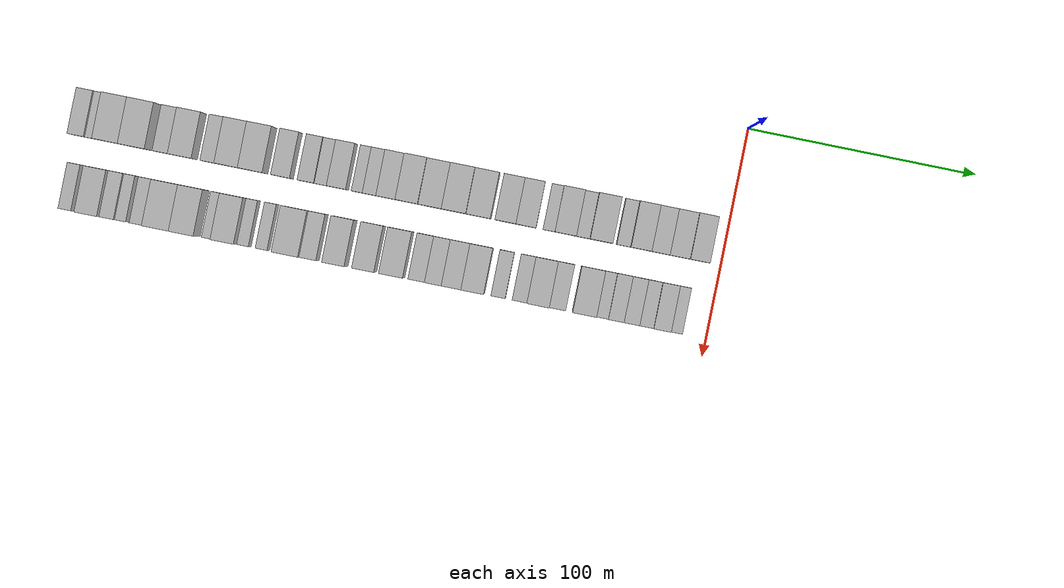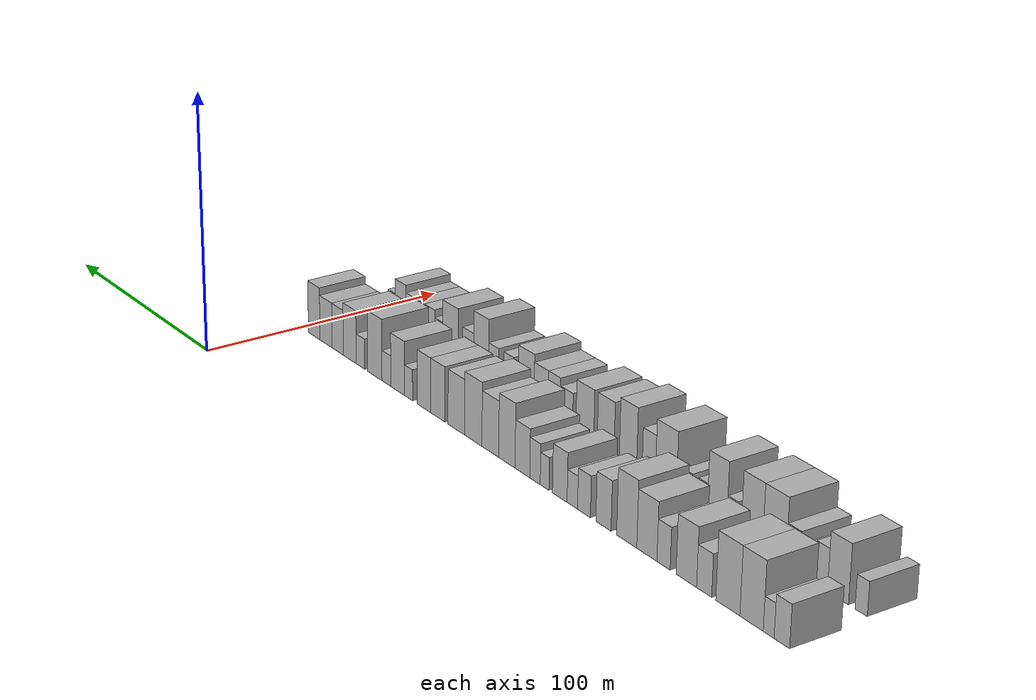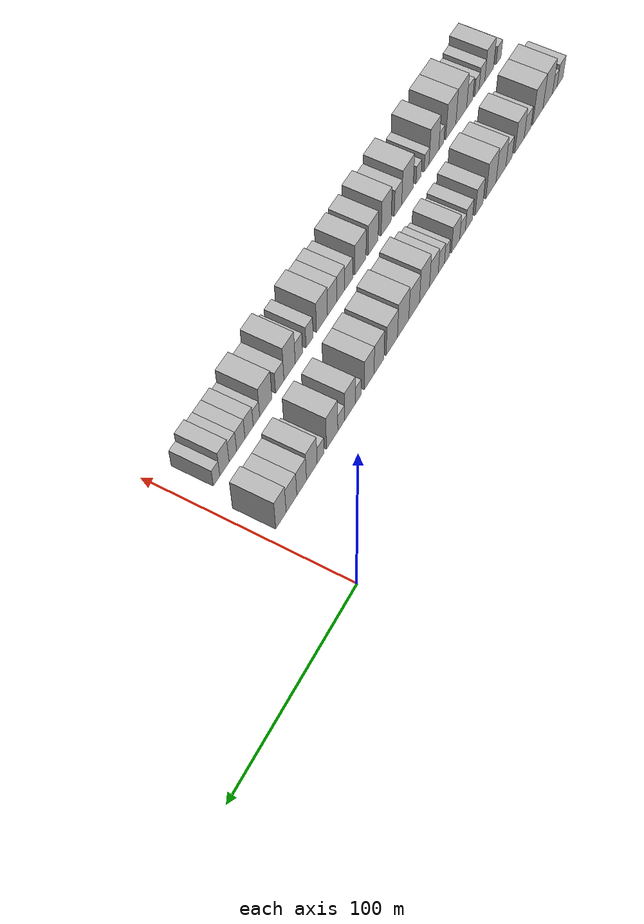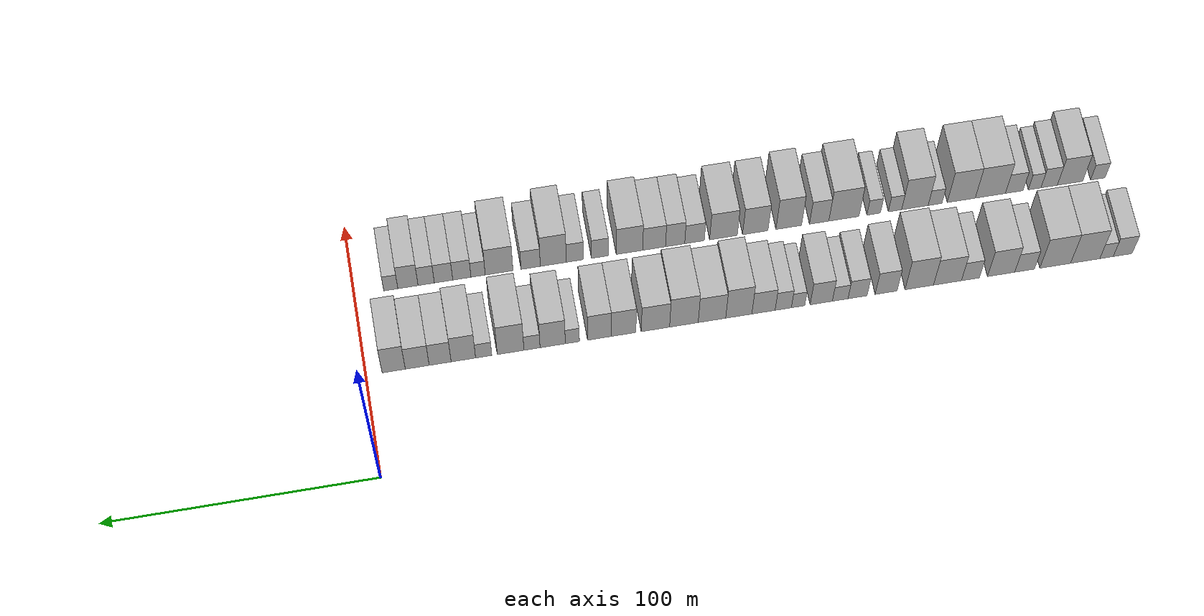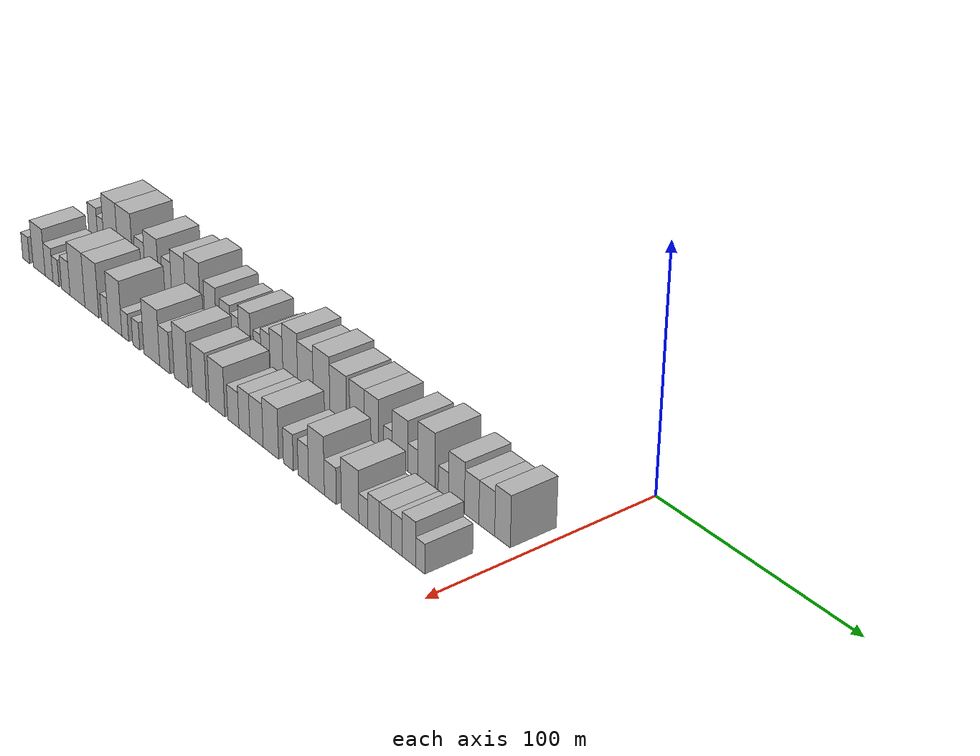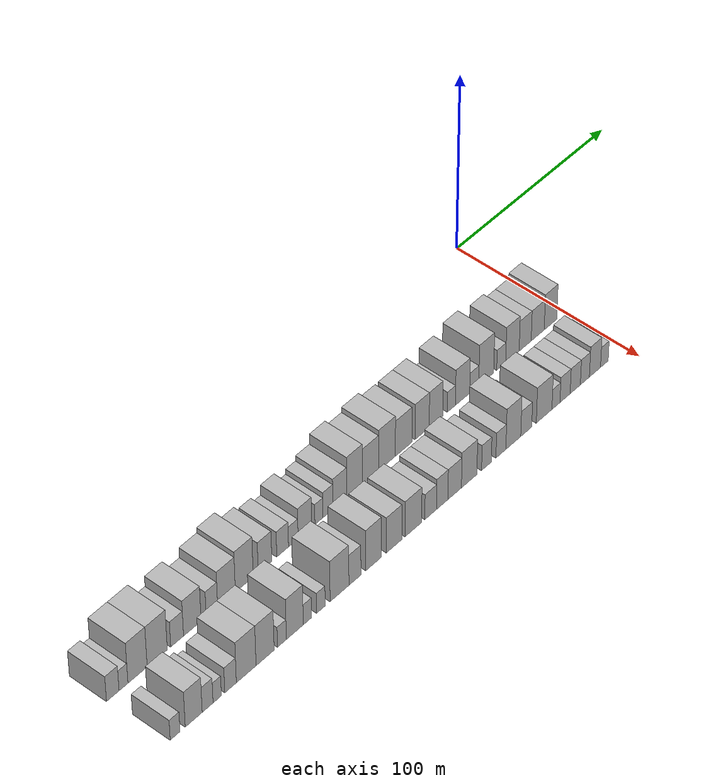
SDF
<sdf version="1.6">
 <world name="default">
  <model name="building_1">
   <static>1</static>
   <pose>50.0000 -280.4300 0 0.000000 0.000000 0.000000</pose>
   <link name="link">
    <pose>0 0 7.50 0 0 0</pose>
    <collision name="collision"><geometry><box><size>20.0000 7.1401 15.0000</size></box></geometry></collision>
    <visual name="visual">
     <cast_shadows>0</cast_shadows>
     <geometry><box><size>20.0000 7.1401 15.0000</size></box></geometry>
     <material>
      <script>
       <uri>model://HANNAS_wall/materials/scripts</uri>
       <uri>model://HANNAS_wall/materials/textures</uri>
       <name>vrc/HANNAS_wall</name>
      </script>
     </material>
    </visual>
   </link>
  </model>
  <model name="building_2">
   <static>1</static>
   <pose>50.0000 -274.3220 0 0.000000 0.000000 0.000000</pose>
   <link name="link">
    <pose>0 0 6.00 0 0 0</pose>
    <collision name="collision"><geometry><box><size>20.0000 5.0758 12.0000</size></box></geometry></collision>
    <visual name="visual">
     <cast_shadows>0</cast_shadows>
     <geometry><box><size>20.0000 5.0758 12.0000</size></box></geometry>
     <material>
      <script>
       <uri>model://HANNAS_wall/materials/scripts</uri>
       <uri>model://HANNAS_wall/materials/textures</uri>
       <name>vrc/HANNAS_wall</name>
      </script>
     </material>
    </visual>
   </link>
  </model>
  <model name="building_3">
   <static>1</static>
   <pose>50.0000 -266.2725 0 0.000000 0.000000 0.000000</pose>
   <link name="link">
    <pose>0 0 12.00 0 0 0</pose>
    <collision name="collision"><geometry><box><size>20.0000 11.0232 24.0000</size></box></geometry></collision>
    <visual name="visual">
     <cast_shadows>0</cast_shadows>
     <geometry><box><size>20.0000 11.0232 24.0000</size></box></geometry>
     <material>
      <script>
       <uri>model://HANNAS_wall/materials/scripts</uri>
       <uri>model://HANNAS_wall/materials/textures</uri>
       <name>vrc/HANNAS_wall</name>
      </script>
     </material>
    </visual>
   </link>
  </model>
  <model name="building_4">
   <static>1</static>
   <pose>50.0000 -254.9526 0 0.000000 0.000000 0.000000</pose>
   <link name="link">
    <pose>0 0 12.00 0 0 0</pose>
    <collision name="collision"><geometry><box><size>20.0000 11.6165 24.0000</size></box></geometry></collision>
    <visual name="visual">
     <cast_shadows>0</cast_shadows>
     <geometry><box><size>20.0000 11.6165 24.0000</size></box></geometry>
     <material>
      <script>
       <uri>model://HANNAS_wall/materials/scripts</uri>
       <uri>model://HANNAS_wall/materials/textures</uri>
       <name>vrc/HANNAS_wall</name>
      </script>
     </material>
    </visual>
   </link>
  </model>
  <model name="building_5">
   <static>1</static>
   <pose>50.0000 -243.4171 0 0.000000 0.000000 0.000000</pose>
   <link name="link">
    <pose>0 0 7.50 0 0 0</pose>
    <collision name="collision"><geometry><box><size>20.0000 7.4547 15.0000</size></box></geometry></collision>
    <visual name="visual">
     <cast_shadows>0</cast_shadows>
     <geometry><box><size>20.0000 7.4547 15.0000</size></box></geometry>
     <material>
      <script>
       <uri>model://HANNAS_wall/materials/scripts</uri>
       <uri>model://HANNAS_wall/materials/textures</uri>
       <name>vrc/HANNAS_wall</name>
      </script>
     </material>
    </visual>
   </link>
  </model>
  <model name="building_6">
   <static>1</static>
   <pose>50.0000 -234.5609 0 0.000000 0.000000 0.000000</pose>
   <link name="link">
    <pose>0 0 10.50 0 0 0</pose>
    <collision name="collision"><geometry><box><size>20.0000 10.2577 21.0000</size></box></geometry></collision>
    <visual name="visual">
     <cast_shadows>0</cast_shadows>
     <geometry><box><size>20.0000 10.2577 21.0000</size></box></geometry>
     <material>
      <script>
       <uri>model://HANNAS_wall/materials/scripts</uri>
       <uri>model://HANNAS_wall/materials/textures</uri>
       <name>vrc/HANNAS_wall</name>
      </script>
     </material>
    </visual>
   </link>
  </model>
  <model name="building_7">
   <static>1</static>
   <pose>50.0000 -223.0473 0 0.000000 0.000000 0.000000</pose>
   <link name="link">
    <pose>0 0 7.50 0 0 0</pose>
    <collision name="collision"><geometry><box><size>20.0000 6.7694 15.0000</size></box></geometry></collision>
    <visual name="visual">
     <cast_shadows>0</cast_shadows>
     <geometry><box><size>20.0000 6.7694 15.0000</size></box></geometry>
     <material>
      <script>
       <uri>model://HANNAS_wall/materials/scripts</uri>
       <uri>model://HANNAS_wall/materials/textures</uri>
       <name>vrc/HANNAS_wall</name>
      </script>
     </material>
    </visual>
   </link>
  </model>
  <model name="building_8">
   <static>1</static>
   <pose>50.0000 -214.4296 0 0.000000 0.000000 0.000000</pose>
   <link name="link">
    <pose>0 0 10.50 0 0 0</pose>
    <collision name="collision"><geometry><box><size>20.0000 10.4660 21.0000</size></box></geometry></collision>
    <visual name="visual">
     <cast_shadows>0</cast_shadows>
     <geometry><box><size>20.0000 10.4660 21.0000</size></box></geometry>
     <material>
      <script>
       <uri>model://HANNAS_wall/materials/scripts</uri>
       <uri>model://HANNAS_wall/materials/textures</uri>
       <name>vrc/HANNAS_wall</name>
      </script>
     </material>
    </visual>
   </link>
  </model>
  <model name="building_9">
   <static>1</static>
   <pose>50.0000 -203.8691 0 0.000000 0.000000 0.000000</pose>
   <link name="link">
    <pose>0 0 12.00 0 0 0</pose>
    <collision name="collision"><geometry><box><size>20.0000 10.6550 24.0000</size></box></geometry></collision>
    <visual name="visual">
     <cast_shadows>0</cast_shadows>
     <geometry><box><size>20.0000 10.6550 24.0000</size></box></geometry>
     <material>
      <script>
       <uri>model://HANNAS_wall/materials/scripts</uri>
       <uri>model://HANNAS_wall/materials/textures</uri>
       <name>vrc/HANNAS_wall</name>
      </script>
     </material>
    </visual>
   </link>
  </model>
  <model name="building_10">
   <static>1</static>
   <pose>50.0000 -191.4496 0 0.000000 0.000000 0.000000</pose>
   <link name="link">
    <pose>0 0 9.00 0 0 0</pose>
    <collision name="collision"><geometry><box><size>20.0000 8.1842 18.0000</size></box></geometry></collision>
    <visual name="visual">
     <cast_shadows>0</cast_shadows>
     <geometry><box><size>20.0000 8.1842 18.0000</size></box></geometry>
     <material>
      <script>
       <uri>model://HANNAS_wall/materials/scripts</uri>
       <uri>model://HANNAS_wall/materials/textures</uri>
       <name>vrc/HANNAS_wall</name>
      </script>
     </material>
    </visual>
   </link>
  </model>
  <model name="building_11">
   <static>1</static>
   <pose>50.0000 -180.8008 0 0.000000 0.000000 0.000000</pose>
   <link name="link">
    <pose>0 0 7.50 0 0 0</pose>
    <collision name="collision"><geometry><box><size>20.0000 7.1133 15.0000</size></box></geometry></collision>
    <visual name="visual">
     <cast_shadows>0</cast_shadows>
     <geometry><box><size>20.0000 7.1133 15.0000</size></box></geometry>
     <material>
      <script>
       <uri>model://HANNAS_wall/materials/scripts</uri>
       <uri>model://HANNAS_wall/materials/textures</uri>
       <name>vrc/HANNAS_wall</name>
      </script>
     </material>
    </visual>
   </link>
  </model>
  <model name="building_12">
   <static>1</static>
   <pose>50.0000 -174.3327 0 0.000000 0.000000 0.000000</pose>
   <link name="link">
    <pose>0 0 6.00 0 0 0</pose>
    <collision name="collision"><geometry><box><size>20.0000 5.8230 12.0000</size></box></geometry></collision>
    <visual name="visual">
     <cast_shadows>0</cast_shadows>
     <geometry><box><size>20.0000 5.8230 12.0000</size></box></geometry>
     <material>
      <script>
       <uri>model://HANNAS_wall/materials/scripts</uri>
       <uri>model://HANNAS_wall/materials/textures</uri>
       <name>vrc/HANNAS_wall</name>
      </script>
     </material>
    </visual>
   </link>
  </model>
  <model name="building_13">
   <static>1</static>
   <pose>50.0000 -167.2773 0 0.000000 0.000000 0.000000</pose>
   <link name="link">
    <pose>0 0 9.00 0 0 0</pose>
    <collision name="collision"><geometry><box><size>20.0000 8.2878 18.0000</size></box></geometry></collision>
    <visual name="visual">
     <cast_shadows>0</cast_shadows>
     <geometry><box><size>20.0000 8.2878 18.0000</size></box></geometry>
     <material>
      <script>
       <uri>model://HANNAS_wall/materials/scripts</uri>
       <uri>model://HANNAS_wall/materials/textures</uri>
       <name>vrc/HANNAS_wall</name>
      </script>
     </material>
    </visual>
   </link>
  </model>
  <model name="building_14">
   <static>1</static>
   <pose>50.0000 -158.6507 0 0.000000 0.000000 0.000000</pose>
   <link name="link">
    <pose>0 0 6.00 0 0 0</pose>
    <collision name="collision"><geometry><box><size>20.0000 4.9654 12.0000</size></box></geometry></collision>
    <visual name="visual">
     <cast_shadows>0</cast_shadows>
     <geometry><box><size>20.0000 4.9654 12.0000</size></box></geometry>
     <material>
      <script>
       <uri>model://HANNAS_wall/materials/scripts</uri>
       <uri>model://HANNAS_wall/materials/textures</uri>
       <name>vrc/HANNAS_wall</name>
      </script>
     </material>
    </visual>
   </link>
  </model>
  <model name="building_15">
   <static>1</static>
   <pose>50.0000 -153.1409 0 0.000000 0.000000 0.000000</pose>
   <link name="link">
    <pose>0 0 7.50 0 0 0</pose>
    <collision name="collision"><geometry><box><size>20.0000 6.0542 15.0000</size></box></geometry></collision>
    <visual name="visual">
     <cast_shadows>0</cast_shadows>
     <geometry><box><size>20.0000 6.0542 15.0000</size></box></geometry>
     <material>
      <script>
       <uri>model://HANNAS_wall/materials/scripts</uri>
       <uri>model://HANNAS_wall/materials/textures</uri>
       <name>vrc/HANNAS_wall</name>
      </script>
     </material>
    </visual>
   </link>
  </model>
  <model name="building_16">
   <static>1</static>
   <pose>50.0000 -145.7998 0 0.000000 0.000000 0.000000</pose>
   <link name="link">
    <pose>0 0 9.00 0 0 0</pose>
    <collision name="collision"><geometry><box><size>20.0000 8.6280 18.0000</size></box></geometry></collision>
    <visual name="visual">
     <cast_shadows>0</cast_shadows>
     <geometry><box><size>20.0000 8.6280 18.0000</size></box></geometry>
     <material>
      <script>
       <uri>model://HANNAS_wall/materials/scripts</uri>
       <uri>model://HANNAS_wall/materials/textures</uri>
       <name>vrc/HANNAS_wall</name>
      </script>
     </material>
    </visual>
   </link>
  </model>
  <model name="building_17">
   <static>1</static>
   <pose>50.0000 -136.6325 0 0.000000 0.000000 0.000000</pose>
   <link name="link">
    <pose>0 0 12.00 0 0 0</pose>
    <collision name="collision"><geometry><box><size>20.0000 9.7068 24.0000</size></box></geometry></collision>
    <visual name="visual">
     <cast_shadows>0</cast_shadows>
     <geometry><box><size>20.0000 9.7068 24.0000</size></box></geometry>
     <material>
      <script>
       <uri>model://HANNAS_wall/materials/scripts</uri>
       <uri>model://HANNAS_wall/materials/textures</uri>
       <name>vrc/HANNAS_wall</name>
      </script>
     </material>
    </visual>
   </link>
  </model>
  <model name="building_18">
   <static>1</static>
   <pose>50.0000 -126.6958 0 0.000000 0.000000 0.000000</pose>
   <link name="link">
    <pose>0 0 10.50 0 0 0</pose>
    <collision name="collision"><geometry><box><size>20.0000 10.1666 21.0000</size></box></geometry></collision>
    <visual name="visual">
     <cast_shadows>0</cast_shadows>
     <geometry><box><size>20.0000 10.1666 21.0000</size></box></geometry>
     <material>
      <script>
       <uri>model://HANNAS_wall/materials/scripts</uri>
       <uri>model://HANNAS_wall/materials/textures</uri>
       <name>vrc/HANNAS_wall</name>
      </script>
     </material>
    </visual>
   </link>
  </model>
  <model name="building_19">
   <static>1</static>
   <pose>50.0000 -116.3341 0 0.000000 0.000000 0.000000</pose>
   <link name="link">
    <pose>0 0 12.00 0 0 0</pose>
    <collision name="collision"><geometry><box><size>20.0000 10.5568 24.0000</size></box></geometry></collision>
    <visual name="visual">
     <cast_shadows>0</cast_shadows>
     <geometry><box><size>20.0000 10.5568 24.0000</size></box></geometry>
     <material>
      <script>
       <uri>model://HANNAS_wall/materials/scripts</uri>
       <uri>model://HANNAS_wall/materials/textures</uri>
       <name>vrc/HANNAS_wall</name>
      </script>
     </material>
    </visual>
   </link>
  </model>
  <model name="building_20">
   <static>1</static>
   <pose>50.0000 -105.8217 0 0.000000 0.000000 0.000000</pose>
   <link name="link">
    <pose>0 0 10.50 0 0 0</pose>
    <collision name="collision"><geometry><box><size>20.0000 10.4680 21.0000</size></box></geometry></collision>
    <visual name="visual">
     <cast_shadows>0</cast_shadows>
     <geometry><box><size>20.0000 10.4680 21.0000</size></box></geometry>
     <material>
      <script>
       <uri>model://HANNAS_wall/materials/scripts</uri>
       <uri>model://HANNAS_wall/materials/textures</uri>
       <name>vrc/HANNAS_wall</name>
      </script>
     </material>
    </visual>
   </link>
  </model>
  <model name="building_21">
   <static>1</static>
   <pose>50.0000 -94.0558 0 0.000000 0.000000 0.000000</pose>
   <link name="link">
    <pose>0 0 10.50 0 0 0</pose>
    <collision name="collision"><geometry><box><size>20.0000 9.0638 21.0000</size></box></geometry></collision>
    <visual name="visual">
     <cast_shadows>0</cast_shadows>
     <geometry><box><size>20.0000 9.0638 21.0000</size></box></geometry>
     <material>
      <script>
       <uri>model://HANNAS_wall/materials/scripts</uri>
       <uri>model://HANNAS_wall/materials/textures</uri>
       <name>vrc/HANNAS_wall</name>
      </script>
     </material>
    </visual>
   </link>
  </model>
  <model name="building_22">
   <static>1</static>
   <pose>50.0000 -85.1823 0 0.000000 0.000000 0.000000</pose>
   <link name="link">
    <pose>0 0 10.50 0 0 0</pose>
    <collision name="collision"><geometry><box><size>20.0000 8.6832 21.0000</size></box></geometry></collision>
    <visual name="visual">
     <cast_shadows>0</cast_shadows>
     <geometry><box><size>20.0000 8.6832 21.0000</size></box></geometry>
     <material>
      <script>
       <uri>model://HANNAS_wall/materials/scripts</uri>
       <uri>model://HANNAS_wall/materials/textures</uri>
       <name>vrc/HANNAS_wall</name>
      </script>
     </material>
    </visual>
   </link>
  </model>
  <model name="building_23">
   <static>1</static>
   <pose>50.0000 -75.2520 0 0.000000 0.000000 0.000000</pose>
   <link name="link">
    <pose>0 0 6.00 0 0 0</pose>
    <collision name="collision"><geometry><box><size>20.0000 5.1775 12.0000</size></box></geometry></collision>
    <visual name="visual">
     <cast_shadows>0</cast_shadows>
     <geometry><box><size>20.0000 5.1775 12.0000</size></box></geometry>
     <material>
      <script>
       <uri>model://HANNAS_wall/materials/scripts</uri>
       <uri>model://HANNAS_wall/materials/textures</uri>
       <name>vrc/HANNAS_wall</name>
      </script>
     </material>
    </visual>
   </link>
  </model>
  <model name="building_24">
   <static>1</static>
   <pose>50.0000 -68.0340 0 0.000000 0.000000 0.000000</pose>
   <link name="link">
    <pose>0 0 10.50 0 0 0</pose>
    <collision name="collision"><geometry><box><size>20.0000 9.2584 21.0000</size></box></geometry></collision>
    <visual name="visual">
     <cast_shadows>0</cast_shadows>
     <geometry><box><size>20.0000 9.2584 21.0000</size></box></geometry>
     <material>
      <script>
       <uri>model://HANNAS_wall/materials/scripts</uri>
       <uri>model://HANNAS_wall/materials/textures</uri>
       <name>vrc/HANNAS_wall</name>
      </script>
     </material>
    </visual>
   </link>
  </model>
  <model name="building_25">
   <static>1</static>
   <pose>50.0000 -60.4463 0 0.000000 0.000000 0.000000</pose>
   <link name="link">
    <pose>0 0 6.00 0 0 0</pose>
    <collision name="collision"><geometry><box><size>20.0000 5.9170 12.0000</size></box></geometry></collision>
    <visual name="visual">
     <cast_shadows>0</cast_shadows>
     <geometry><box><size>20.0000 5.9170 12.0000</size></box></geometry>
     <material>
      <script>
       <uri>model://HANNAS_wall/materials/scripts</uri>
       <uri>model://HANNAS_wall/materials/textures</uri>
       <name>vrc/HANNAS_wall</name>
      </script>
     </material>
    </visual>
   </link>
  </model>
  <model name="building_26">
   <static>1</static>
   <pose>50.0000 -52.6109 0 0.000000 0.000000 0.000000</pose>
   <link name="link">
    <pose>0 0 12.00 0 0 0</pose>
    <collision name="collision"><geometry><box><size>20.0000 9.7540 24.0000</size></box></geometry></collision>
    <visual name="visual">
     <cast_shadows>0</cast_shadows>
     <geometry><box><size>20.0000 9.7540 24.0000</size></box></geometry>
     <material>
      <script>
       <uri>model://HANNAS_wall/materials/scripts</uri>
       <uri>model://HANNAS_wall/materials/textures</uri>
       <name>vrc/HANNAS_wall</name>
      </script>
     </material>
    </visual>
   </link>
  </model>
  <model name="building_27">
   <static>1</static>
   <pose>50.0000 -42.7771 0 0.000000 0.000000 0.000000</pose>
   <link name="link">
    <pose>0 0 6.00 0 0 0</pose>
    <collision name="collision"><geometry><box><size>20.0000 5.9135 12.0000</size></box></geometry></collision>
    <visual name="visual">
     <cast_shadows>0</cast_shadows>
     <geometry><box><size>20.0000 5.9135 12.0000</size></box></geometry>
     <material>
      <script>
       <uri>model://HANNAS_wall/materials/scripts</uri>
       <uri>model://HANNAS_wall/materials/textures</uri>
       <name>vrc/HANNAS_wall</name>
      </script>
     </material>
    </visual>
   </link>
  </model>
  <model name="building_28">
   <static>1</static>
   <pose>50.0000 -35.3607 0 0.000000 0.000000 0.000000</pose>
   <link name="link">
    <pose>0 0 10.50 0 0 0</pose>
    <collision name="collision"><geometry><box><size>20.0000 8.9193 21.0000</size></box></geometry></collision>
    <visual name="visual">
     <cast_shadows>0</cast_shadows>
     <geometry><box><size>20.0000 8.9193 21.0000</size></box></geometry>
     <material>
      <script>
       <uri>model://HANNAS_wall/materials/scripts</uri>
       <uri>model://HANNAS_wall/materials/textures</uri>
       <name>vrc/HANNAS_wall</name>
      </script>
     </material>
    </visual>
   </link>
  </model>
  <model name="building_29">
   <static>1</static>
   <pose>50.0000 -26.9006 0 0.000000 0.000000 0.000000</pose>
   <link name="link">
    <pose>0 0 9.00 0 0 0</pose>
    <collision name="collision"><geometry><box><size>20.0000 8.0008 18.0000</size></box></geometry></collision>
    <visual name="visual">
     <cast_shadows>0</cast_shadows>
     <geometry><box><size>20.0000 8.0008 18.0000</size></box></geometry>
     <material>
      <script>
       <uri>model://HANNAS_wall/materials/scripts</uri>
       <uri>model://HANNAS_wall/materials/textures</uri>
       <name>vrc/HANNAS_wall</name>
      </script>
     </material>
    </visual>
   </link>
  </model>
  <model name="building_30">
   <static>1</static>
   <pose>50.0000 -18.5486 0 0.000000 0.000000 0.000000</pose>
   <link name="link">
    <pose>0 0 9.00 0 0 0</pose>
    <collision name="collision"><geometry><box><size>20.0000 8.7033 18.0000</size></box></geometry></collision>
    <visual name="visual">
     <cast_shadows>0</cast_shadows>
     <geometry><box><size>20.0000 8.7033 18.0000</size></box></geometry>
     <material>
      <script>
       <uri>model://HANNAS_wall/materials/scripts</uri>
       <uri>model://HANNAS_wall/materials/textures</uri>
       <name>vrc/HANNAS_wall</name>
      </script>
     </material>
    </visual>
   </link>
  </model>
  <model name="building_31">
   <static>1</static>
   <pose>50.0000 -9.9834 0 0.000000 0.000000 0.000000</pose>
   <link name="link">
    <pose>0 0 10.50 0 0 0</pose>
    <collision name="collision"><geometry><box><size>20.0000 8.4271 21.0000</size></box></geometry></collision>
    <visual name="visual">
     <cast_shadows>0</cast_shadows>
     <geometry><box><size>20.0000 8.4271 21.0000</size></box></geometry>
     <material>
      <script>
       <uri>model://HANNAS_wall/materials/scripts</uri>
       <uri>model://HANNAS_wall/materials/textures</uri>
       <name>vrc/HANNAS_wall</name>
      </script>
     </material>
    </visual>
   </link>
  </model>
  <model name="building_60">
   <static>1</static>
   <pose>82.0000 -279.2086 0 0.000000 0.000000 0.000000</pose>
   <link name="link">
    <pose>0 0 6.00 0 0 0</pose>
    <collision name="collision"><geometry><box><size>20.0000 5.5827 12.0000</size></box></geometry></collision>
    <visual name="visual">
     <cast_shadows>0</cast_shadows>
     <geometry><box><size>20.0000 5.5827 12.0000</size></box></geometry>
     <material>
      <script>
       <uri>model://HANNAS_wall/materials/scripts</uri>
       <uri>model://HANNAS_wall/materials/textures</uri>
       <name>vrc/HANNAS_wall</name>
      </script>
     </material>
    </visual>
   </link>
  </model>
  <model name="building_61">
   <static>1</static>
   <pose>82.0000 -268.5561 0 0.000000 0.000000 0.000000</pose>
   <link name="link">
    <pose>0 0 10.50 0 0 0</pose>
    <collision name="collision"><geometry><box><size>20.0000 9.7223 21.0000</size></box></geometry></collision>
    <visual name="visual">
     <cast_shadows>0</cast_shadows>
     <geometry><box><size>20.0000 9.7223 21.0000</size></box></geometry>
     <material>
      <script>
       <uri>model://HANNAS_wall/materials/scripts</uri>
       <uri>model://HANNAS_wall/materials/textures</uri>
       <name>vrc/HANNAS_wall</name>
      </script>
     </material>
    </visual>
   </link>
  </model>
  <model name="building_62">
   <static>1</static>
   <pose>82.0000 -260.5660 0 0.000000 0.000000 0.000000</pose>
   <link name="link">
    <pose>0 0 7.50 0 0 0</pose>
    <collision name="collision"><geometry><box><size>20.0000 6.2579 15.0000</size></box></geometry></collision>
    <visual name="visual">
     <cast_shadows>0</cast_shadows>
     <geometry><box><size>20.0000 6.2579 15.0000</size></box></geometry>
     <material>
      <script>
       <uri>model://HANNAS_wall/materials/scripts</uri>
       <uri>model://HANNAS_wall/materials/textures</uri>
       <name>vrc/HANNAS_wall</name>
      </script>
     </material>
    </visual>
   </link>
  </model>
  <model name="building_63">
   <static>1</static>
   <pose>82.0000 -255.0244 0 0.000000 0.000000 0.000000</pose>
   <link name="link">
    <pose>0 0 6.00 0 0 0</pose>
    <collision name="collision"><geometry><box><size>20.0000 4.8252 12.0000</size></box></geometry></collision>
    <visual name="visual">
     <cast_shadows>0</cast_shadows>
     <geometry><box><size>20.0000 4.8252 12.0000</size></box></geometry>
     <material>
      <script>
       <uri>model://HANNAS_wall/materials/scripts</uri>
       <uri>model://HANNAS_wall/materials/textures</uri>
       <name>vrc/HANNAS_wall</name>
      </script>
     </material>
    </visual>
   </link>
  </model>
  <model name="building_64">
   <static>1</static>
   <pose>82.0000 -247.2567 0 0.000000 0.000000 0.000000</pose>
   <link name="link">
    <pose>0 0 7.50 0 0 0</pose>
    <collision name="collision"><geometry><box><size>20.0000 6.7103 15.0000</size></box></geometry></collision>
    <visual name="visual">
     <cast_shadows>0</cast_shadows>
     <geometry><box><size>20.0000 6.7103 15.0000</size></box></geometry>
     <material>
      <script>
       <uri>model://HANNAS_wall/materials/scripts</uri>
       <uri>model://HANNAS_wall/materials/textures</uri>
       <name>vrc/HANNAS_wall</name>
      </script>
     </material>
    </visual>
   </link>
  </model>
  <model name="building_65">
   <static>1</static>
   <pose>82.0000 -238.1398 0 0.000000 0.000000 0.000000</pose>
   <link name="link">
    <pose>0 0 12.00 0 0 0</pose>
    <collision name="collision"><geometry><box><size>20.0000 11.5235 24.0000</size></box></geometry></collision>
    <visual name="visual">
     <cast_shadows>0</cast_shadows>
     <geometry><box><size>20.0000 11.5235 24.0000</size></box></geometry>
     <material>
      <script>
       <uri>model://HANNAS_wall/materials/scripts</uri>
       <uri>model://HANNAS_wall/materials/textures</uri>
       <name>vrc/HANNAS_wall</name>
      </script>
     </material>
    </visual>
   </link>
  </model>
  <model name="building_66">
   <static>1</static>
   <pose>82.0000 -227.0429 0 0.000000 0.000000 0.000000</pose>
   <link name="link">
    <pose>0 0 12.00 0 0 0</pose>
    <collision name="collision"><geometry><box><size>20.0000 10.6705 24.0000</size></box></geometry></collision>
    <visual name="visual">
     <cast_shadows>0</cast_shadows>
     <geometry><box><size>20.0000 10.6705 24.0000</size></box></geometry>
     <material>
      <script>
       <uri>model://HANNAS_wall/materials/scripts</uri>
       <uri>model://HANNAS_wall/materials/textures</uri>
       <name>vrc/HANNAS_wall</name>
      </script>
     </material>
    </visual>
   </link>
  </model>
  <model name="building_67">
   <static>1</static>
   <pose>82.0000 -217.0891 0 0.000000 0.000000 0.000000</pose>
   <link name="link">
    <pose>0 0 6.00 0 0 0</pose>
    <collision name="collision"><geometry><box><size>20.0000 5.2370 12.0000</size></box></geometry></collision>
    <visual name="visual">
     <cast_shadows>0</cast_shadows>
     <geometry><box><size>20.0000 5.2370 12.0000</size></box></geometry>
     <material>
      <script>
       <uri>model://HANNAS_wall/materials/scripts</uri>
       <uri>model://HANNAS_wall/materials/textures</uri>
       <name>vrc/HANNAS_wall</name>
      </script>
     </material>
    </visual>
   </link>
  </model>
  <model name="building_68">
   <static>1</static>
   <pose>82.0000 -209.4249 0 0.000000 0.000000 0.000000</pose>
   <link name="link">
    <pose>0 0 12.00 0 0 0</pose>
    <collision name="collision"><geometry><box><size>20.0000 10.0914 24.0000</size></box></geometry></collision>
    <visual name="visual">
     <cast_shadows>0</cast_shadows>
     <geometry><box><size>20.0000 10.0914 24.0000</size></box></geometry>
     <material>
      <script>
       <uri>model://HANNAS_wall/materials/scripts</uri>
       <uri>model://HANNAS_wall/materials/textures</uri>
       <name>vrc/HANNAS_wall</name>
      </script>
     </material>
    </visual>
   </link>
  </model>
  <model name="building_69">
   <static>1</static>
   <pose>82.0000 -201.8696 0 0.000000 0.000000 0.000000</pose>
   <link name="link">
    <pose>0 0 6.00 0 0 0</pose>
    <collision name="collision"><geometry><box><size>20.0000 5.0193 12.0000</size></box></geometry></collision>
    <visual name="visual">
     <cast_shadows>0</cast_shadows>
     <geometry><box><size>20.0000 5.0193 12.0000</size></box></geometry>
     <material>
      <script>
       <uri>model://HANNAS_wall/materials/scripts</uri>
       <uri>model://HANNAS_wall/materials/textures</uri>
       <name>vrc/HANNAS_wall</name>
      </script>
     </material>
    </visual>
   </link>
  </model>
  <model name="building_70">
   <static>1</static>
   <pose>82.0000 -193.8006 0 0.000000 0.000000 0.000000</pose>
   <link name="link">
    <pose>0 0 6.00 0 0 0</pose>
    <collision name="collision"><geometry><box><size>20.0000 5.1186 12.0000</size></box></geometry></collision>
    <visual name="visual">
     <cast_shadows>0</cast_shadows>
     <geometry><box><size>20.0000 5.1186 12.0000</size></box></geometry>
     <material>
      <script>
       <uri>model://HANNAS_wall/materials/scripts</uri>
       <uri>model://HANNAS_wall/materials/textures</uri>
       <name>vrc/HANNAS_wall</name>
      </script>
     </material>
    </visual>
   </link>
  </model>
  <model name="building_71">
   <static>1</static>
   <pose>82.0000 -182.5330 0 0.000000 0.000000 0.000000</pose>
   <link name="link">
    <pose>0 0 12.00 0 0 0</pose>
    <collision name="collision"><geometry><box><size>20.0000 11.4166 24.0000</size></box></geometry></collision>
    <visual name="visual">
     <cast_shadows>0</cast_shadows>
     <geometry><box><size>20.0000 11.4166 24.0000</size></box></geometry>
     <material>
      <script>
       <uri>model://HANNAS_wall/materials/scripts</uri>
       <uri>model://HANNAS_wall/materials/textures</uri>
       <name>vrc/HANNAS_wall</name>
      </script>
     </material>
    </visual>
   </link>
  </model>
  <model name="building_72">
   <static>1</static>
   <pose>82.0000 -173.1772 0 0.000000 0.000000 0.000000</pose>
   <link name="link">
    <pose>0 0 9.00 0 0 0</pose>
    <collision name="collision"><geometry><box><size>20.0000 7.2949 18.0000</size></box></geometry></collision>
    <visual name="visual">
     <cast_shadows>0</cast_shadows>
     <geometry><box><size>20.0000 7.2949 18.0000</size></box></geometry>
     <material>
      <script>
       <uri>model://HANNAS_wall/materials/scripts</uri>
       <uri>model://HANNAS_wall/materials/textures</uri>
       <name>vrc/HANNAS_wall</name>
      </script>
     </material>
    </visual>
   </link>
  </model>
  <model name="building_73">
   <static>1</static>
   <pose>82.0000 -161.7076 0 0.000000 0.000000 0.000000</pose>
   <link name="link">
    <pose>0 0 12.00 0 0 0</pose>
    <collision name="collision"><geometry><box><size>20.0000 9.6444 24.0000</size></box></geometry></collision>
    <visual name="visual">
     <cast_shadows>0</cast_shadows>
     <geometry><box><size>20.0000 9.6444 24.0000</size></box></geometry>
     <material>
      <script>
       <uri>model://HANNAS_wall/materials/scripts</uri>
       <uri>model://HANNAS_wall/materials/textures</uri>
       <name>vrc/HANNAS_wall</name>
      </script>
     </material>
    </visual>
   </link>
  </model>
  <model name="building_74">
   <static>1</static>
   <pose>82.0000 -149.1072 0 0.000000 0.000000 0.000000</pose>
   <link name="link">
    <pose>0 0 10.50 0 0 0</pose>
    <collision name="collision"><geometry><box><size>20.0000 9.5562 21.0000</size></box></geometry></collision>
    <visual name="visual">
     <cast_shadows>0</cast_shadows>
     <geometry><box><size>20.0000 9.5562 21.0000</size></box></geometry>
     <material>
      <script>
       <uri>model://HANNAS_wall/materials/scripts</uri>
       <uri>model://HANNAS_wall/materials/textures</uri>
       <name>vrc/HANNAS_wall</name>
      </script>
     </material>
    </visual>
   </link>
  </model>
  <model name="building_75">
   <static>1</static>
   <pose>82.0000 -137.1418 0 0.000000 0.000000 0.000000</pose>
   <link name="link">
    <pose>0 0 10.50 0 0 0</pose>
    <collision name="collision"><geometry><box><size>20.0000 10.3747 21.0000</size></box></geometry></collision>
    <visual name="visual">
     <cast_shadows>0</cast_shadows>
     <geometry><box><size>20.0000 10.3747 21.0000</size></box></geometry>
     <material>
      <script>
       <uri>model://HANNAS_wall/materials/scripts</uri>
       <uri>model://HANNAS_wall/materials/textures</uri>
       <name>vrc/HANNAS_wall</name>
      </script>
     </material>
    </visual>
   </link>
  </model>
  <model name="building_76">
   <static>1</static>
   <pose>82.0000 -126.2881 0 0.000000 0.000000 0.000000</pose>
   <link name="link">
    <pose>0 0 7.50 0 0 0</pose>
    <collision name="collision"><geometry><box><size>20.0000 7.3325 15.0000</size></box></geometry></collision>
    <visual name="visual">
     <cast_shadows>0</cast_shadows>
     <geometry><box><size>20.0000 7.3325 15.0000</size></box></geometry>
     <material>
      <script>
       <uri>model://HANNAS_wall/materials/scripts</uri>
       <uri>model://HANNAS_wall/materials/textures</uri>
       <name>vrc/HANNAS_wall</name>
      </script>
     </material>
    </visual>
   </link>
  </model>
  <model name="building_77">
   <static>1</static>
   <pose>82.0000 -119.0209 0 0.000000 0.000000 0.000000</pose>
   <link name="link">
    <pose>0 0 9.00 0 0 0</pose>
    <collision name="collision"><geometry><box><size>20.0000 7.2019 18.0000</size></box></geometry></collision>
    <visual name="visual">
     <cast_shadows>0</cast_shadows>
     <geometry><box><size>20.0000 7.2019 18.0000</size></box></geometry>
     <material>
      <script>
       <uri>model://HANNAS_wall/materials/scripts</uri>
       <uri>model://HANNAS_wall/materials/textures</uri>
       <name>vrc/HANNAS_wall</name>
      </script>
     </material>
    </visual>
   </link>
  </model>
  <model name="building_78">
   <static>1</static>
   <pose>82.0000 -111.1388 0 0.000000 0.000000 0.000000</pose>
   <link name="link">
    <pose>0 0 9.00 0 0 0</pose>
    <collision name="collision"><geometry><box><size>20.0000 8.5622 18.0000</size></box></geometry></collision>
    <visual name="visual">
     <cast_shadows>0</cast_shadows>
     <geometry><box><size>20.0000 8.5622 18.0000</size></box></geometry>
     <material>
      <script>
       <uri>model://HANNAS_wall/materials/scripts</uri>
       <uri>model://HANNAS_wall/materials/textures</uri>
       <name>vrc/HANNAS_wall</name>
      </script>
     </material>
    </visual>
   </link>
  </model>
  <model name="building_79">
   <static>1</static>
   <pose>82.0000 -101.9360 0 0.000000 0.000000 0.000000</pose>
   <link name="link">
    <pose>0 0 10.50 0 0 0</pose>
    <collision name="collision"><geometry><box><size>20.0000 9.8434 21.0000</size></box></geometry></collision>
    <visual name="visual">
     <cast_shadows>0</cast_shadows>
     <geometry><box><size>20.0000 9.8434 21.0000</size></box></geometry>
     <material>
      <script>
       <uri>model://HANNAS_wall/materials/scripts</uri>
       <uri>model://HANNAS_wall/materials/textures</uri>
       <name>vrc/HANNAS_wall</name>
      </script>
     </material>
    </visual>
   </link>
  </model>
  <model name="building_80">
   <static>1</static>
   <pose>82.0000 -90.8969 0 0.000000 0.000000 0.000000</pose>
   <link name="link">
    <pose>0 0 7.50 0 0 0</pose>
    <collision name="collision"><geometry><box><size>20.0000 6.2347 15.0000</size></box></geometry></collision>
    <visual name="visual">
     <cast_shadows>0</cast_shadows>
     <geometry><box><size>20.0000 6.2347 15.0000</size></box></geometry>
     <material>
      <script>
       <uri>model://HANNAS_wall/materials/scripts</uri>
       <uri>model://HANNAS_wall/materials/textures</uri>
       <name>vrc/HANNAS_wall</name>
      </script>
     </material>
    </visual>
   </link>
  </model>
  <model name="building_81">
   <static>1</static>
   <pose>82.0000 -81.5745 0 0.000000 0.000000 0.000000</pose>
   <link name="link">
    <pose>0 0 7.50 0 0 0</pose>
    <collision name="collision"><geometry><box><size>20.0000 6.4102 15.0000</size></box></geometry></collision>
    <visual name="visual">
     <cast_shadows>0</cast_shadows>
     <geometry><box><size>20.0000 6.4102 15.0000</size></box></geometry>
     <material>
      <script>
       <uri>model://HANNAS_wall/materials/scripts</uri>
       <uri>model://HANNAS_wall/materials/textures</uri>
       <name>vrc/HANNAS_wall</name>
      </script>
     </material>
    </visual>
   </link>
  </model>
  <model name="building_82">
   <static>1</static>
   <pose>82.0000 -73.5486 0 0.000000 0.000000 0.000000</pose>
   <link name="link">
    <pose>0 0 12.00 0 0 0</pose>
    <collision name="collision"><geometry><box><size>20.0000 9.6416 24.0000</size></box></geometry></collision>
    <visual name="visual">
     <cast_shadows>0</cast_shadows>
     <geometry><box><size>20.0000 9.6416 24.0000</size></box></geometry>
     <material>
      <script>
       <uri>model://HANNAS_wall/materials/scripts</uri>
       <uri>model://HANNAS_wall/materials/textures</uri>
       <name>vrc/HANNAS_wall</name>
      </script>
     </material>
    </visual>
   </link>
  </model>
  <model name="building_83">
   <static>1</static>
   <pose>82.0000 -65.1463 0 0.000000 0.000000 0.000000</pose>
   <link name="link">
    <pose>0 0 7.50 0 0 0</pose>
    <collision name="collision"><geometry><box><size>20.0000 7.1630 15.0000</size></box></geometry></collision>
    <visual name="visual">
     <cast_shadows>0</cast_shadows>
     <geometry><box><size>20.0000 7.1630 15.0000</size></box></geometry>
     <material>
      <script>
       <uri>model://HANNAS_wall/materials/scripts</uri>
       <uri>model://HANNAS_wall/materials/textures</uri>
       <name>vrc/HANNAS_wall</name>
      </script>
     </material>
    </visual>
   </link>
  </model>
  <model name="building_84">
   <static>1</static>
   <pose>82.0000 -53.4312 0 0.000000 0.000000 0.000000</pose>
   <link name="link">
    <pose>0 0 10.50 0 0 0</pose>
    <collision name="collision"><geometry><box><size>20.0000 10.2672 21.0000</size></box></geometry></collision>
    <visual name="visual">
     <cast_shadows>0</cast_shadows>
     <geometry><box><size>20.0000 10.2672 21.0000</size></box></geometry>
     <material>
      <script>
       <uri>model://HANNAS_wall/materials/scripts</uri>
       <uri>model://HANNAS_wall/materials/textures</uri>
       <name>vrc/HANNAS_wall</name>
      </script>
     </material>
    </visual>
   </link>
  </model>
  <model name="building_85">
   <static>1</static>
   <pose>82.0000 -45.6472 0 0.000000 0.000000 0.000000</pose>
   <link name="link">
    <pose>0 0 6.00 0 0 0</pose>
    <collision name="collision"><geometry><box><size>20.0000 5.3010 12.0000</size></box></geometry></collision>
    <visual name="visual">
     <cast_shadows>0</cast_shadows>
     <geometry><box><size>20.0000 5.3010 12.0000</size></box></geometry>
     <material>
      <script>
       <uri>model://HANNAS_wall/materials/scripts</uri>
       <uri>model://HANNAS_wall/materials/textures</uri>
       <name>vrc/HANNAS_wall</name>
      </script>
     </material>
    </visual>
   </link>
  </model>
  <model name="building_86">
   <static>1</static>
   <pose>82.0000 -39.6247 0 0.000000 0.000000 0.000000</pose>
   <link name="link">
    <pose>0 0 7.50 0 0 0</pose>
    <collision name="collision"><geometry><box><size>20.0000 6.7440 15.0000</size></box></geometry></collision>
    <visual name="visual">
     <cast_shadows>0</cast_shadows>
     <geometry><box><size>20.0000 6.7440 15.0000</size></box></geometry>
     <material>
      <script>
       <uri>model://HANNAS_wall/materials/scripts</uri>
       <uri>model://HANNAS_wall/materials/textures</uri>
       <name>vrc/HANNAS_wall</name>
      </script>
     </material>
    </visual>
   </link>
  </model>
  <model name="building_87">
   <static>1</static>
   <pose>82.0000 -32.8546 0 0.000000 0.000000 0.000000</pose>
   <link name="link">
    <pose>0 0 7.50 0 0 0</pose>
    <collision name="collision"><geometry><box><size>20.0000 6.7962 15.0000</size></box></geometry></collision>
    <visual name="visual">
     <cast_shadows>0</cast_shadows>
     <geometry><box><size>20.0000 6.7962 15.0000</size></box></geometry>
     <material>
      <script>
       <uri>model://HANNAS_wall/materials/scripts</uri>
       <uri>model://HANNAS_wall/materials/textures</uri>
       <name>vrc/HANNAS_wall</name>
      </script>
     </material>
    </visual>
   </link>
  </model>
  <model name="building_88">
   <static>1</static>
   <pose>82.0000 -26.4495 0 0.000000 0.000000 0.000000</pose>
   <link name="link">
    <pose>0 0 7.50 0 0 0</pose>
    <collision name="collision"><geometry><box><size>20.0000 6.0140 15.0000</size></box></geometry></collision>
    <visual name="visual">
     <cast_shadows>0</cast_shadows>
     <geometry><box><size>20.0000 6.0140 15.0000</size></box></geometry>
     <material>
      <script>
       <uri>model://HANNAS_wall/materials/scripts</uri>
       <uri>model://HANNAS_wall/materials/textures</uri>
       <name>vrc/HANNAS_wall</name>
      </script>
     </material>
    </visual>
   </link>
  </model>
  <model name="building_89">
   <static>1</static>
   <pose>82.0000 -19.7163 0 0.000000 0.000000 0.000000</pose>
   <link name="link">
    <pose>0 0 9.00 0 0 0</pose>
    <collision name="collision"><geometry><box><size>20.0000 7.4524 18.0000</size></box></geometry></collision>
    <visual name="visual">
     <cast_shadows>0</cast_shadows>
     <geometry><box><size>20.0000 7.4524 18.0000</size></box></geometry>
     <material>
      <script>
       <uri>model://HANNAS_wall/materials/scripts</uri>
       <uri>model://HANNAS_wall/materials/textures</uri>
       <name>vrc/HANNAS_wall</name>
      </script>
     </material>
    </visual>
   </link>
  </model>
  <model name="building_90">
   <static>1</static>
   <pose>82.0000 -13.3970 0 0.000000 0.000000 0.000000</pose>
   <link name="link">
    <pose>0 0 6.00 0 0 0</pose>
    <collision name="collision"><geometry><box><size>20.0000 5.1863 12.0000</size></box></geometry></collision>
    <visual name="visual">
     <cast_shadows>0</cast_shadows>
     <geometry><box><size>20.0000 5.1863 12.0000</size></box></geometry>
     <material>
      <script>
       <uri>model://HANNAS_wall/materials/scripts</uri>
       <uri>model://HANNAS_wall/materials/textures</uri>
       <name>vrc/HANNAS_wall</name>
      </script>
     </material>
    </visual>
   </link>
  </model>
 </world>
</sdf>
